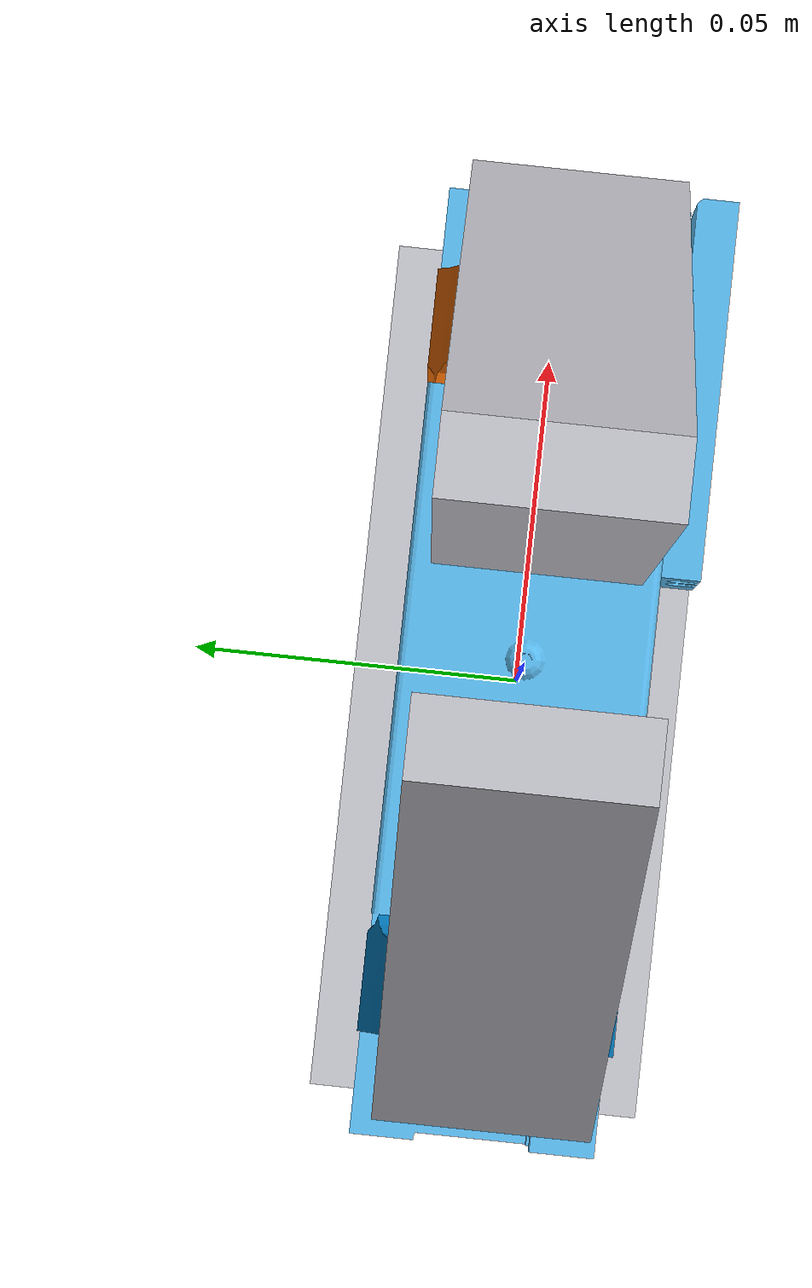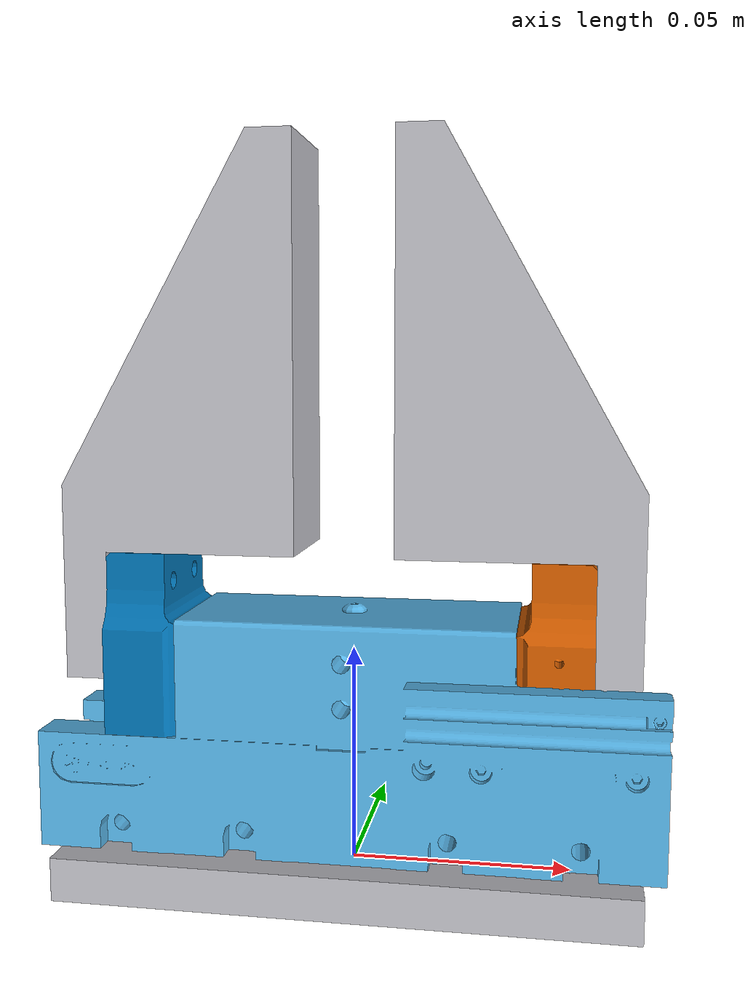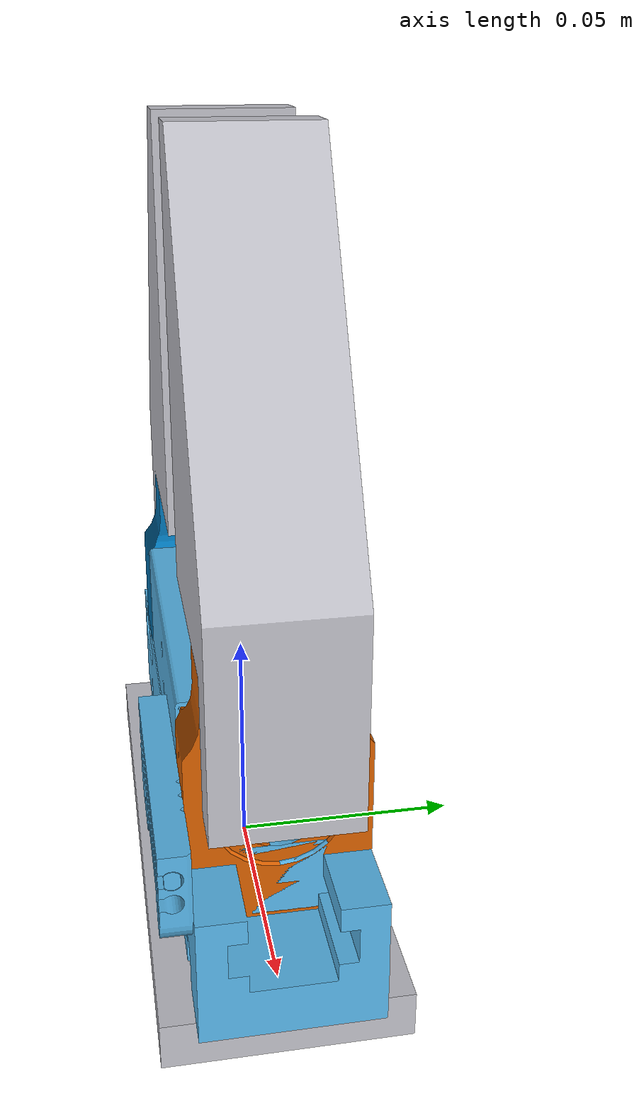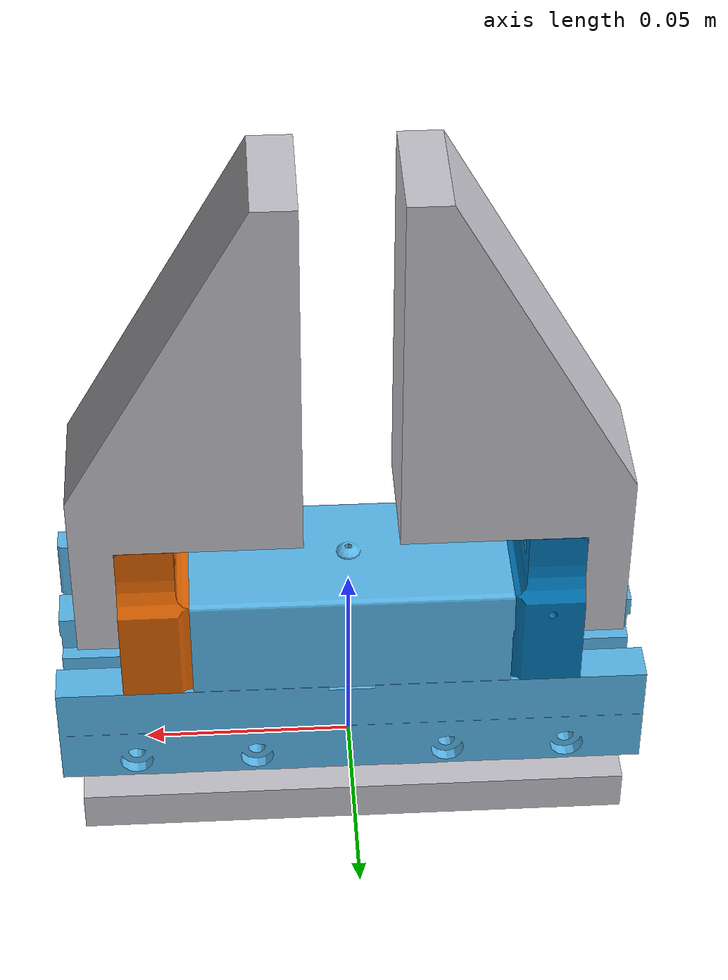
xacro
<?xml version="1.0" ?>

<robot name="hand" xmlns:xacro="http://www.ros.org/wiki/xacro">
    <!-- Ajout des différentes pièces de la pinces / couleurs définies dans le fichier materials.xacro-->
    <link name="adaptater_plate_link">
      <visual>
        <geometry>
          <mesh filename="package://kuka_kr6_700sixx_moveit/meshes/hand/adaptater_plate.stl" scale="0.001 0.001 0.001"/>
        </geometry>
        <material name="silver"/>
      </visual>
      <collision>
        <geometry>
          <mesh filename="package://kuka_kr6_700sixx_moveit/meshes/hand/adaptater_plate.stl" scale="0.001 0.001 0.001"/>
        </geometry>
      </collision>
    </link>
    <link name="KGG_link">
      <visual>
        <geometry>
          <mesh filename="package://kuka_kr6_700sixx_moveit/meshes/hand/SCHUNK-0303070 KGG 140-60 _011.stl" scale="0.001 0.001 0.001"/>
        </geometry>
        <material name="pale_oyster"/>
      </visual>
      <collision>
        <geometry>
          <mesh filename="package://kuka_kr6_700sixx_moveit/meshes/hand/SCHUNK-0303070 KGG 140-60 _011.stl" scale="0.001 0.001 0.001"/>
        </geometry>
      </collision>
    </link>
    <link name="mors1_link">
      <visual>
        <geometry>
          <mesh filename="package://kuka_kr6_700sixx_moveit/meshes/hand/Mors.stl" scale="0.001 0.001 0.001"/>
        </geometry>
        <material name="silver"/>
      </visual>
      <collision>
        <geometry>
          <mesh filename="package://kuka_kr6_700sixx_moveit/meshes/hand/Mors.stl" scale="0.001 0.001 0.001"/>
        </geometry>
      </collision>
    </link>
    <link name="mors2_link">
      <visual>
        <geometry>
          <mesh filename="package://kuka_kr6_700sixx_moveit/meshes/hand/Mors.stl" scale="0.001 0.001 0.001"/>
        </geometry>
        <material name="silver"/>
      </visual>
      <collision>
        <geometry>
          <mesh filename="package://kuka_kr6_700sixx_moveit/meshes/hand/Mors.stl" scale="0.001 0.001 0.001"/>
        </geometry>
      </collision>
    </link>
    <link name="liaison1_link">
      <visual>
        <geometry>
          <mesh filename="package://kuka_kr6_700sixx_moveit/meshes/hand/Piece_liaison.stl" scale="0.001 0.001 0.001"/>
        </geometry>
        <material name="pale_oyster"/>
      </visual>
      <collision>
        <geometry>
          <mesh filename="package://kuka_kr6_700sixx_moveit/meshes/hand/Piece_liaison.stl" scale="0.001 0.001 0.001"/>
        </geometry>
      </collision>
    </link>
    <link name="liaison2_link">
      <visual>
        <geometry>
          <mesh filename="package://kuka_kr6_700sixx_moveit/meshes/hand/Piece_liaison.stl" scale="0.001 0.001 0.001"/>
        </geometry>
        <material name="pale_oyster"/>
      </visual>
      <collision>
        <geometry>
          <mesh filename="package://kuka_kr6_700sixx_moveit/meshes/hand/Piece_liaison.stl" scale="0.001 0.001 0.001"/>
        </geometry>
      </collision>
    </link>

  <joint name="adaptater_plate_KGG" type="fixed" >
    <origin rpy="-1.57079 0 3.141592" xyz="0 0 0.005" />
    <parent link="adaptater_plate_link" />
    <child link="KGG_link" />
  </joint>
  <joint name="KGG_liaison1" type="prismatic" >
    <origin rpy="0 0 0" xyz="0 0 0" />
    <parent link="KGG_link" />
    <child link="liaison1_link" />
    <limit effort="1000.0" lower="-0.5" upper="0.031" velocity="0.5"/>
  </joint>
  <joint name="KGG_laison2" type="prismatic" >
    <origin rpy="0 3.141592 0" xyz="0 0 0" />
    <parent link="KGG_link" />
    <child link="liaison2_link" />
    <limit effort="1000.0" lower="-0.5" upper="0.031" velocity="0.5"/>
  </joint>
  <joint name="liason1_mors1" type="fixed" >
    <origin rpy="0 0 -1.57079" xyz="0.011 -0.039 -0.0145" />
    <parent link="liaison1_link" />
    <child link="mors1_link" />
  </joint>
  <joint name="liaison2_mors2" type="fixed" >
    <origin rpy="0 0 -1.57079" xyz="0.011 -0.039 -0.0145" />
    <parent link="liaison2_link" />
    <child link="mors2_link" />
  </joint>
</robot>
